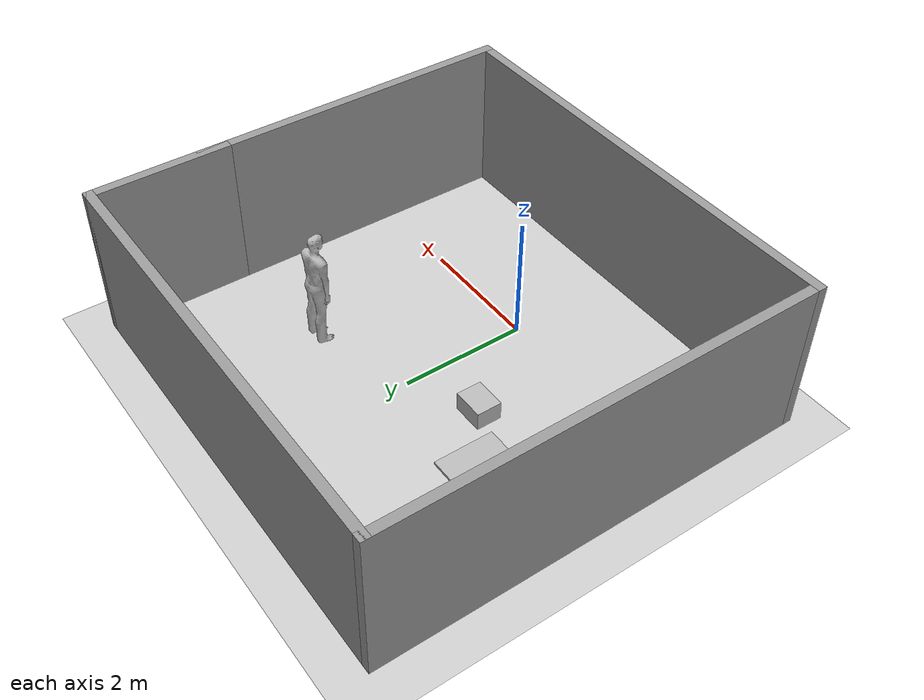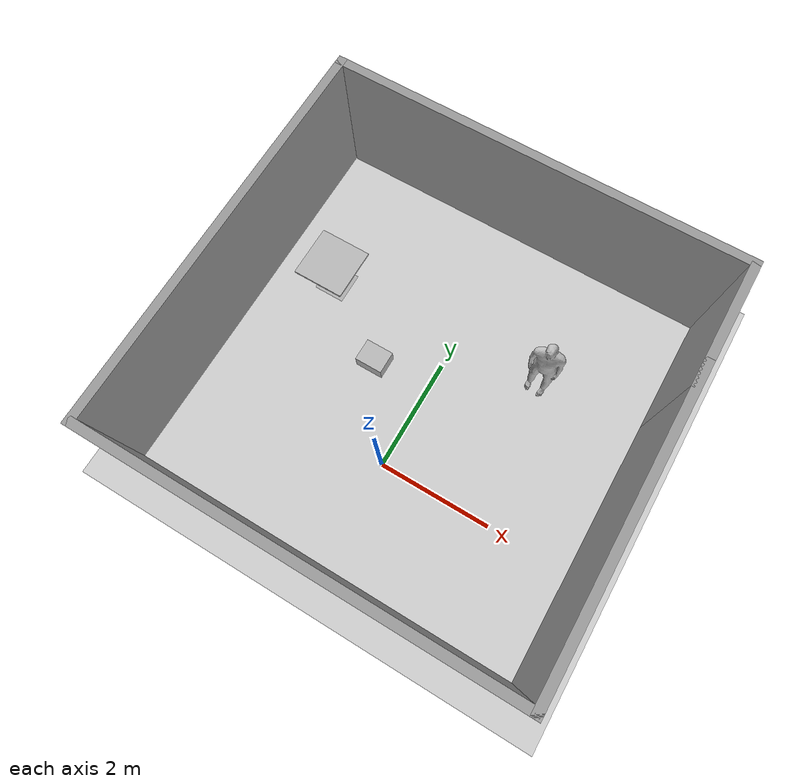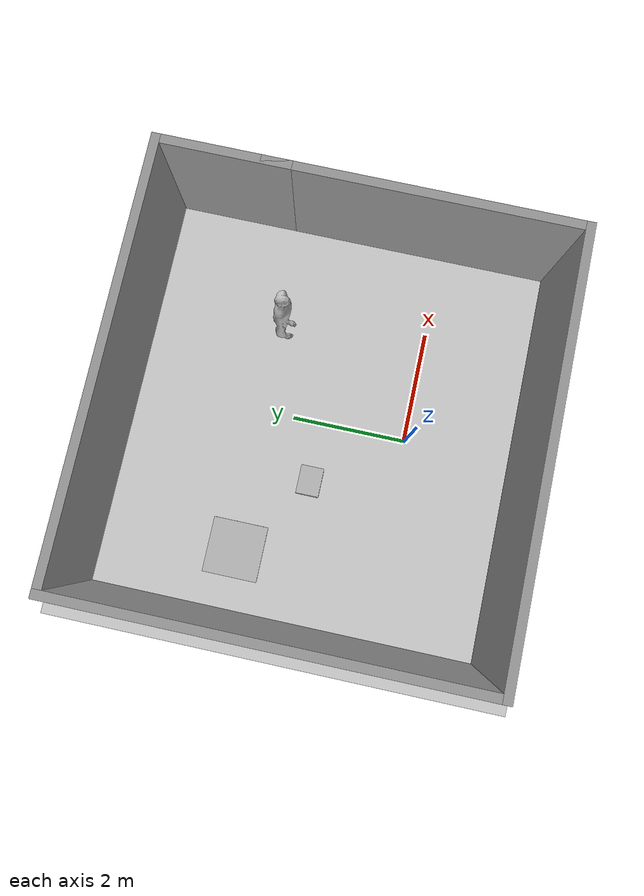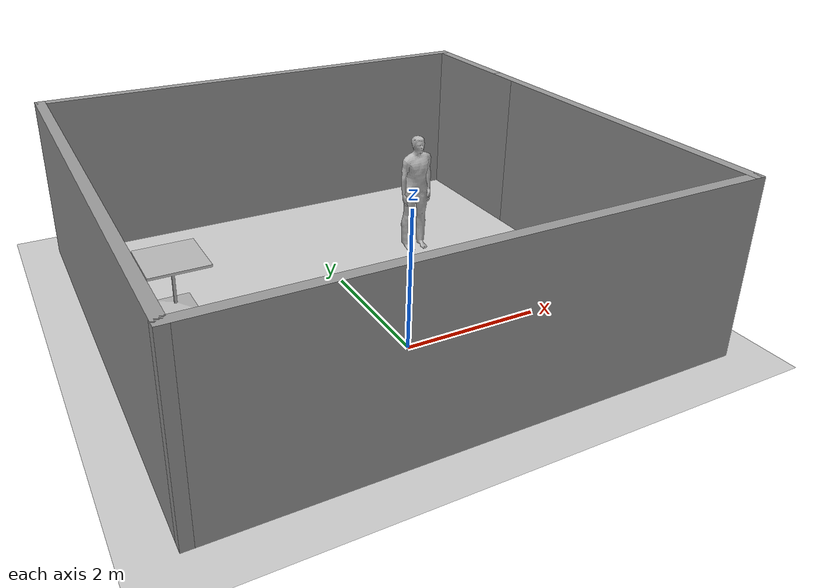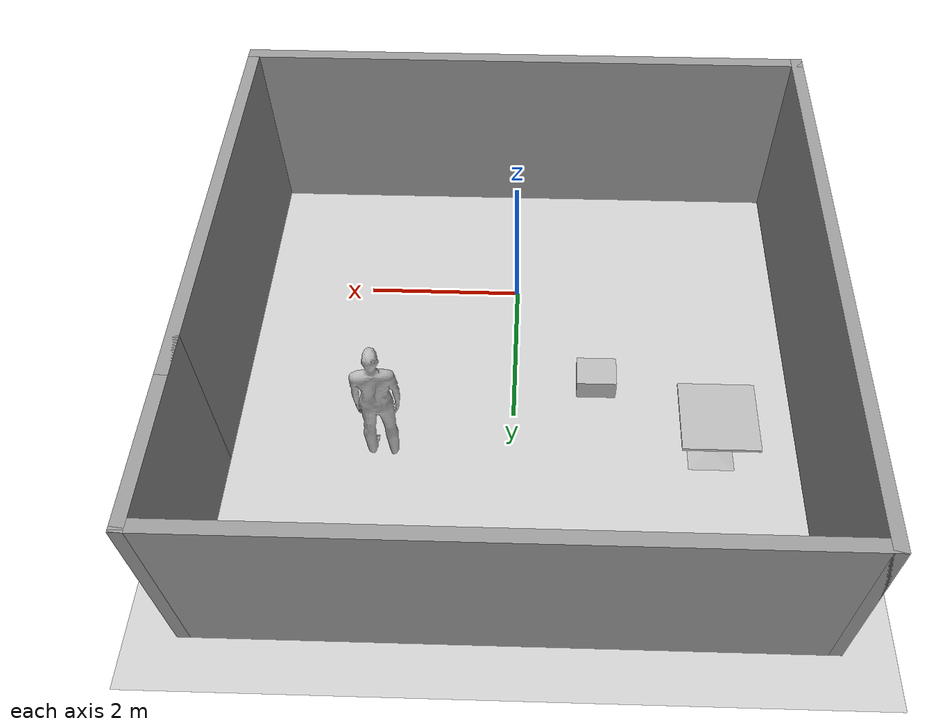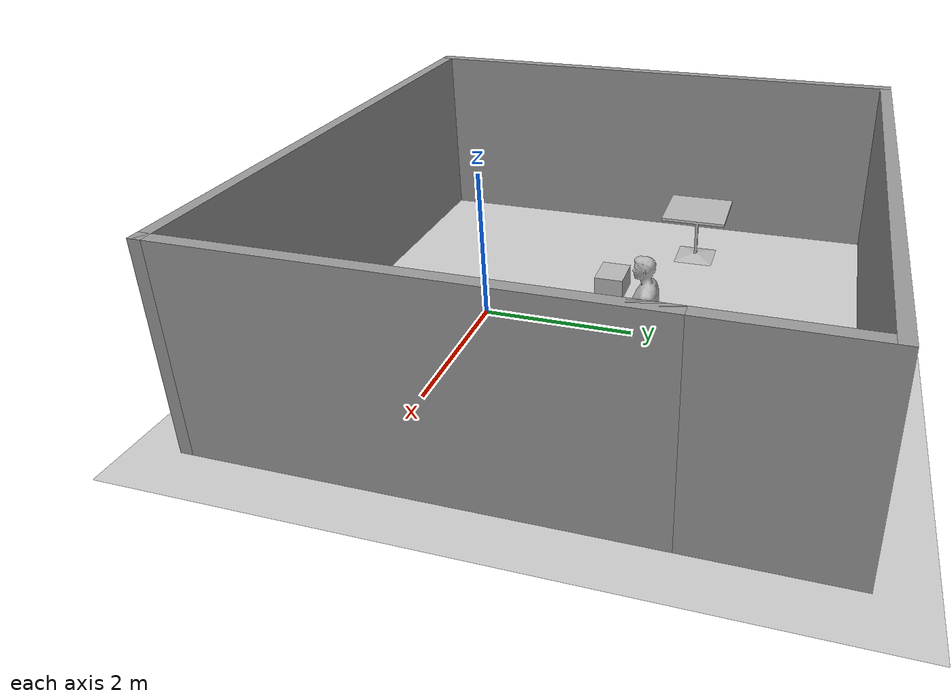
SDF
<sdf version="1.6">
 <world name="default">
  <light name="sun" type="directional">
   <pose>0 0 10 0 -0 0</pose>
   <diffuse>0.8 0.8 0.8 1</diffuse>
   <specular>0.2 0.2 0.2 1</specular>
   <attenuation>
    <range>1000</range>
    <constant>0.9</constant>
    <linear>0.01</linear>
    <quadratic>0.001</quadratic>
   </attenuation>
   <direction>-0.5 0.1 -0.9</direction>
  </light>
  <model name="ground_plane">
   <static>1</static>
   <link name="link">
    <collision name="collision">
     <geometry><plane><normal>0 0 1</normal><size>100 100</size></plane></geometry>
     <surface>
      <contact><collide_bitmask>65535</collide_bitmask></contact>
      <friction><ode><mu>100</mu><mu2>50</mu2></ode></friction>
     </surface>
    </collision>
    <visual name="visual">
     <cast_shadows>0</cast_shadows>
     <geometry><plane><normal>0 0 1</normal><size>100 100</size></plane></geometry>
     <material>
      <script><uri>file://media/materials/scripts/gazebo.material</uri><name>Gazebo/Grey</name></script>
     </material>
    </visual>
   </link>
  </model>
  <gravity>0 0 -9.8</gravity>
  <magnetic_field>6e-06 2.3e-05 -4.2e-05</magnetic_field>
  <atmosphere type="adiabatic"/>
  <physics name="default_physics" default="0" type="ode">
   <max_step_size>0.001</max_step_size>
   <real_time_factor>1</real_time_factor>
   <real_time_update_rate>1000</real_time_update_rate>
  </physics>
  <scene><ambient>0.4 0.4 0.4 1</ambient><background>0.7 0.7 0.7 1</background><shadows>1</shadows></scene>
  <audio><device>default</device></audio>
  <spherical_coordinates>
   <surface_model>EARTH_WGS84</surface_model>
   <latitude_deg>0</latitude_deg>
   <longitude_deg>0</longitude_deg>
   <elevation>0</elevation>
   <heading_deg>0</heading_deg>
  </spherical_coordinates>
  <model name="walled_room">
   <pose>-0.033934 1.47984 0 0 -0 0</pose>
   <link name="Wall_26">
    <collision name="Wall_26_Collision">
     <geometry><box><size>5.25 0.15 2.5</size></box></geometry>
     <pose>0 0 1.25 0 -0 0</pose>
    </collision>
    <visual name="Wall_26_Visual">
     <pose>0 0 1.25 0 -0 0</pose>
     <geometry><box><size>5.25 0.15 2.5</size></box></geometry>
     <material>
      <script><uri>file://media/materials/scripts/gazebo.material</uri><name>Gazebo/Grey</name></script>
      <ambient>1 1 1 1</ambient>
     </material>
     <meta><layer>0</layer></meta>
    </visual>
    <pose>3.55 -0.875 0 0 -0 -1.5708</pose>
   </link>
   <link name="Wall_27">
    <collision name="Wall_27_Collision">
     <geometry><box><size>7.25 0.15 2.5</size></box></geometry>
     <pose>0 0 1.25 0 -0 0</pose>
    </collision>
    <visual name="Wall_27_Visual">
     <pose>0 0 1.25 0 -0 0</pose>
     <geometry><box><size>7.25 0.15 2.5</size></box></geometry>
     <material>
      <script><uri>file://media/materials/scripts/gazebo.material</uri><name>Gazebo/Grey</name></script>
      <ambient>1 1 1 1</ambient>
     </material>
     <meta><layer>0</layer></meta>
    </visual>
    <pose>0 -3.425 0 0 -0 3.14159</pose>
   </link>
   <link name="Wall_28">
    <collision name="Wall_28_Collision">
     <geometry><box><size>7 0.15 2.5</size></box></geometry>
     <pose>0 0 1.25 0 -0 0</pose>
    </collision>
    <visual name="Wall_28_Visual">
     <pose>0 0 1.25 0 -0 0</pose>
     <geometry><box><size>7 0.15 2.5</size></box></geometry>
     <material>
      <script><uri>file://media/materials/scripts/gazebo.material</uri><name>Gazebo/Grey</name></script>
      <ambient>1 1 1 1</ambient>
     </material>
     <meta><layer>0</layer></meta>
    </visual>
    <pose>-3.55 0 0 0 -0 1.5708</pose>
   </link>
   <link name="Wall_29">
    <collision name="Wall_29_Collision">
     <geometry><box><size>7.25 0.15 2.5</size></box></geometry>
     <pose>0 0 1.25 0 -0 0</pose>
    </collision>
    <visual name="Wall_29_Visual">
     <pose>0 0 1.25 0 -0 0</pose>
     <geometry><box><size>7.25 0.15 2.5</size></box></geometry>
     <material>
      <script><uri>file://media/materials/scripts/gazebo.material</uri><name>Gazebo/Grey</name></script>
      <ambient>1 1 1 1</ambient>
     </material>
     <meta><layer>0</layer></meta>
    </visual>
    <pose>0 3.425 0 0 -0 0</pose>
   </link>
   <link name="Wall_30">
    <collision name="Wall_30_Collision">
     <geometry><box><size>2.25 0.15 2.5</size></box></geometry>
     <pose>0 0 1.25 0 -0 0</pose>
    </collision>
    <visual name="Wall_30_Visual">
     <pose>0 0 1.25 0 -0 0</pose>
     <geometry><box><size>2.25 0.15 2.5</size></box></geometry>
     <material>
      <script><uri>file://media/materials/scripts/gazebo.material</uri><name>Gazebo/Grey</name></script>
      <ambient>1 1 1 1</ambient>
     </material>
     <meta><layer>0</layer></meta>
    </visual>
    <pose>3.55 2.375 0 0 -0 -1.5708</pose>
   </link>
   <static>1</static>
  </model>
  <model name="cafe_table">
   <static>1</static>
   <link name="link">
    <collision name="surface">
     <pose>0 0 0.755 0 -0 0</pose>
     <geometry><box><size>0.913 0.913 0.04</size></box></geometry>
    </collision>
    <collision name="column">
     <pose>0 0 0.37 0 -0 0</pose>
     <geometry><box><size>0.042 0.042 0.74</size></box></geometry>
    </collision>
    <collision name="base">
     <pose>0 0 0.02 0 -0 0</pose>
     <geometry><box><size>0.56 0.56 0.04</size></box></geometry>
    </collision>
    <visual name="visual">
     <geometry><mesh><uri>model://cafe_table/meshes/cafe_table.dae</uri></mesh></geometry>
    </visual>
   </link>
   <pose>-2.43949 2.43834 0 0 -0 0</pose>
  </model>
  <model name="person_standing">
   <link name="link">
    <inertial>
     <pose>0 -0.1 0.95 0 -0 0</pose>
     <mass>80</mass>
     <inertia><ixx>24.88</ixx><ixy>0</ixy><ixz>0</ixz><iyy>25.73</iyy><iyz>0</iyz><izz>2.48</izz></inertia>
    </inertial>
    <collision name="bottom">
     <pose>0 -0.1 0.01 0 -0 0</pose>
     <geometry><box><size>0.5 0.35 0.02</size></box></geometry>
    </collision>
    <collision name="person">
     <pose>0 0 0.02 0.04 -0 0</pose>
     <geometry><mesh><uri>model://person_standing/meshes/standing.dae</uri></mesh></geometry>
    </collision>
    <visual name="visual">
     <pose>0 0 0.02 0.04 -0 0</pose>
     <geometry><mesh><uri>model://person_standing/meshes/standing.dae</uri></mesh></geometry>
    </visual>
   </link>
   <pose>1.56466 2.59409 -1e-06 -1e-06 1e-06 -0.000403</pose>
  </model>
  <model name="cardboard_box">
   <pose>-1.0479 1.4881 0.14951 2e-06 -2e-06 -0</pose>
   <link name="link">
    <inertial>
     <mass>2</mass>
     <inertia>
      <ixx>0.0416667</ixx>
      <ixy>0</ixy>
      <ixz>0</ixz>
      <iyy>0.0566667</iyy>
      <iyz>0</iyz>
      <izz>0.0683333</izz>
     </inertia>
    </inertial>
    <collision name="collision">
     <geometry><box><size>0.5 0.4 0.3</size></box></geometry>
     <surface>
      <friction><ode><mu>1</mu><mu2>1</mu2></ode></friction>
      <contact><ode><kp>1e+07</kp><kd>1</kd><min_depth>0.001</min_depth><max_vel>0.1</max_vel></ode></contact>
     </surface>
    </collision>
    <visual name="visual">
     <pose>0 0 -0.15 0 -0 0</pose>
     <geometry>
      <mesh><uri>model://cardboard_box/meshes/cardboard_box.dae</uri><scale>1.25932 1.00745 0.755591</scale></mesh>
     </geometry>
    </visual>
   </link>
  </model>
 </world>
</sdf>
